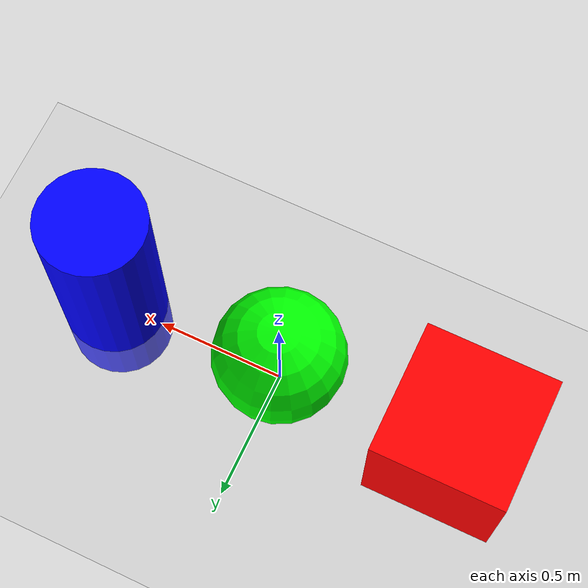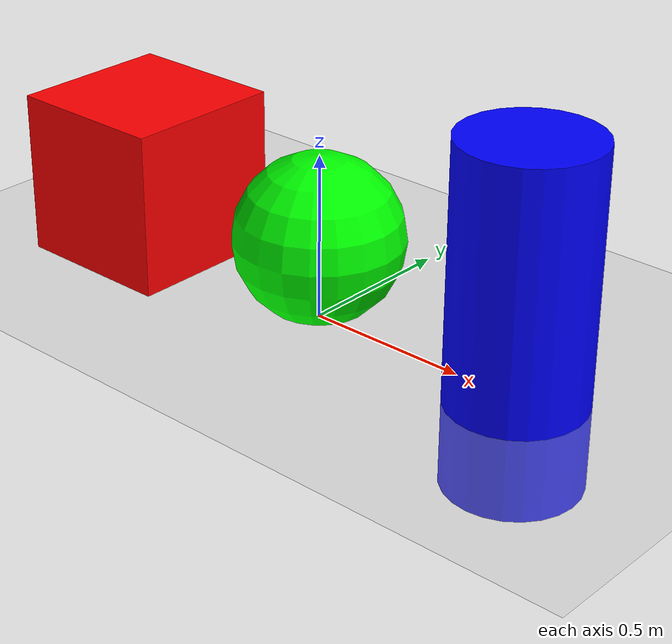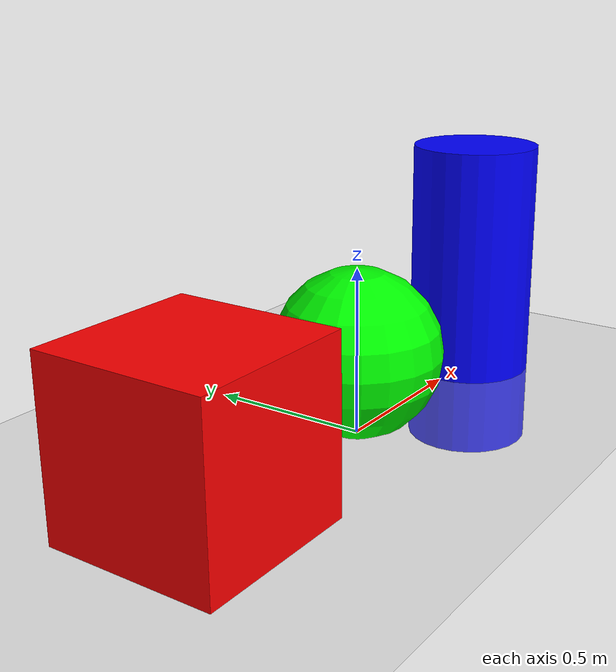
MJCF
<mujoco model="basic_scene">
  <compiler angle="degree"/>

  <option timestep="0.002" gravity="0 0 -9.81"/>

  <worldbody>
    <!-- 조명 -->
    <light name="main_light" pos="0 0 3" dir="0 0 -1"/>

    <!-- 바닥 -->
    <geom
      name="floor"
      type="plane"
      pos="0 0 0"
      size="5 5 0.1"
      rgba="0.8 0.8 0.8 1"
    />

    <!-- 박스 -->
    <body name="box_body" pos="-0.7 0 0.25">
      <geom
        name="box"
        type="box"
        size="0.25 0.25 0.25"
        rgba="1 0 0 1"
      />
    </body>

    <body name="sphere_body" pos="0 0 0.25">
      <geom
        name="sphere"
        type="sphere"
        size="0.25"
        rgba="0 1 0 1"
      />
    </body>

    <!-- 원기둥 -->
    <body name="cylinder_body" pos="0.7 0 0.25">
      <geom
        name="cylinder"
        type="cylinder"
        size="0.2 0.5"
        rgba="0 0 1 1"
      />
    </body>

    <!-- 카메라 -->
    <camera
      name="main_camera"
      pos="0 -3 1.5"
      euler="65 0 0"
      fovy="45"
    />
  </worldbody>
</mujoco>
